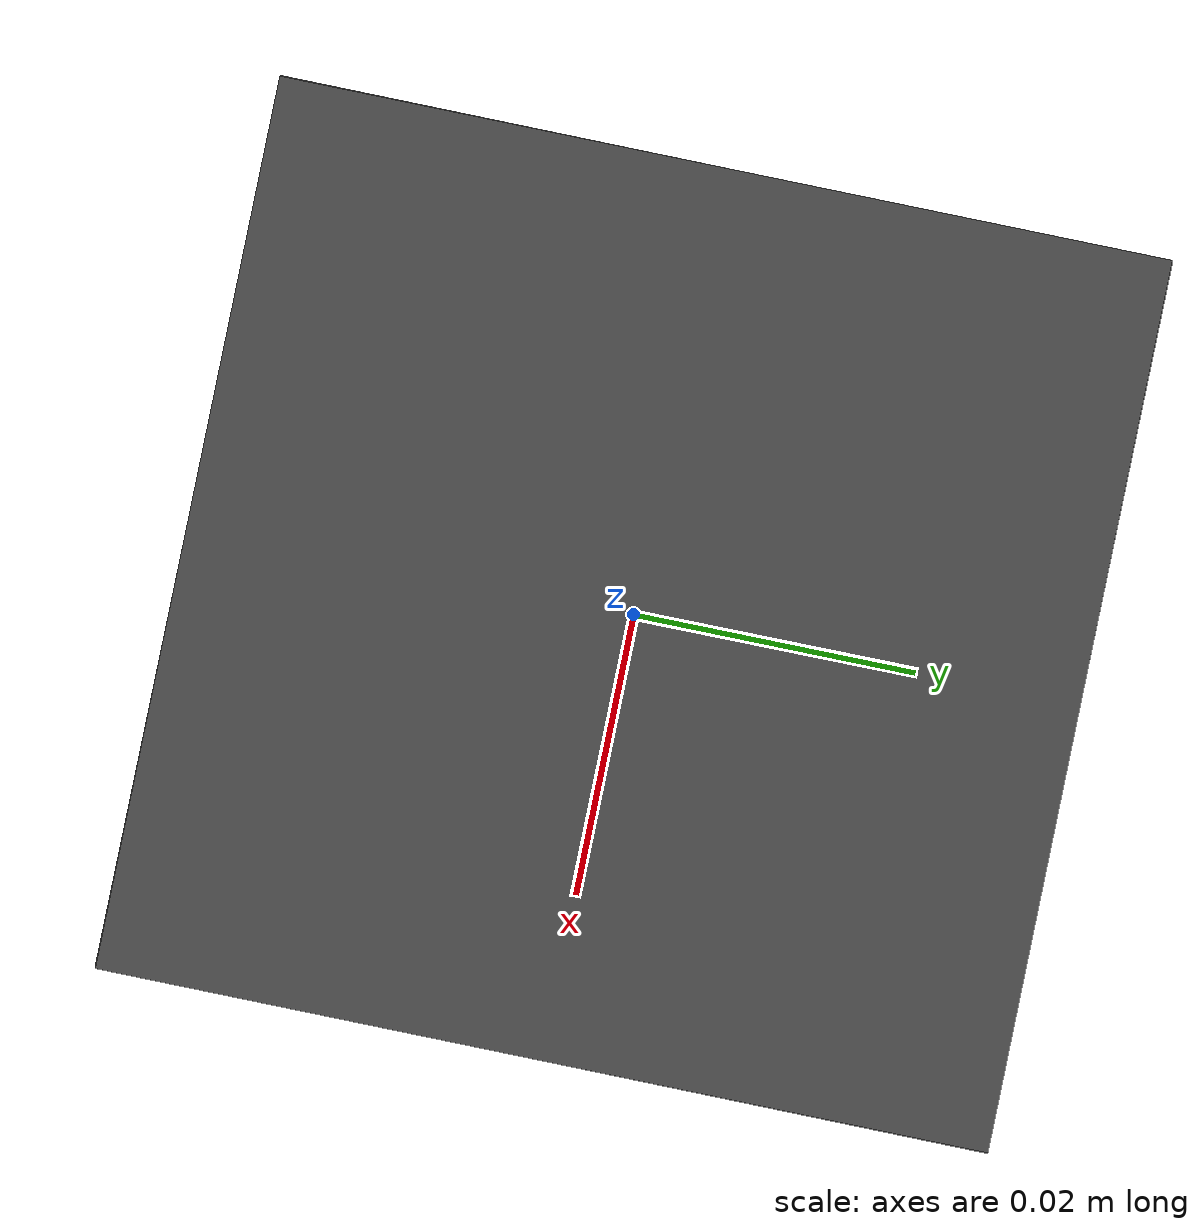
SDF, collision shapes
<?xml version='1.0'?>
<sdf version='1.6'>
  <model name='distance_sensor'>
    <pose>0 0 0 0 0 0</pose>

<!-- distance sensor 00 -->

    <link name='distance_sensor_link_00'>
      <inertial>
        <pose>0 0 0 0 0 0</pose>
        <mass>0.0000000001</mass>
        <inertia>
          <ixx>0.00001</ixx>
          <ixy>0</ixy>
          <ixz>0</ixz>
          <iyy>0.00002</iyy>
          <iyz>0</iyz>
          <izz>0.00002</izz>
        </inertia>
      </inertial>
      <collision name='distance_sensor_collision'>
        <pose>0 0 -0.000001 0 0 0</pose>
        <geometry>
          <box>
            <size>0.05 0.05 0.1</size>
          </box>
        </geometry>
        <surface>
          <contact>
            <ode>
              <max_vel>100.0</max_vel>
              <min_depth>0.001</min_depth>
            </ode>
          </contact>
          <friction>
            <ode>
              <mu>100000.0</mu>
              <mu2>100000.0</mu2>
            </ode>
          </friction>
        </surface>
      </collision>
      <visual name='distance_sensor_visual'>
        <geometry>
          <mesh>
            <uri>model://distance_sensor/meshes/hokuyo.dae</uri>
          </mesh>
        </geometry>
        <material>
          <script>
            <name>Gazebo/DarkGrey</name>
          </script>
        </material>
      </visual>
      <sensor type="ray" name="range_sensor">
      <pose>0.08090 0.0588 0 0 0 0.6283</pose>
      <visualize>true</visualize>
      <update_rate>30</update_rate>
      <ray>
        <scan>
          <horizontal>
            <samples>2</samples>
            <resolution>1</resolution>
            <min_angle>-0.1745</min_angle>
            <max_angle>0.1745</max_angle>
          </horizontal>
          <vertical>
            <samples>2</samples>
            <resolution>1</resolution>
            <min_angle>-0.174533</min_angle>
            <max_angle>0.174533</max_angle>
          </vertical>
        </scan>
        <range>
          <min>0.10</min>
          <max>1</max>
          <resolution>0.001</resolution>
        </range>
        <noise>
          <type>gaussian</type>
          <mean>0.0</mean>
          <stddev>0.01</stddev>
        </noise>
      </ray>
      <plugin filename="libgazebo_ros_range.so" name="gazebo_ros_range">
            <topicName>/iris/distance_sensor_00</topicName>
            <frameName>distance_sensor_link_00</frameName>
            <gaussianNoise>0.000</gaussianNoise>
            <alwaysOn>true</alwaysOn>
            <updateRate>10</updateRate>
            <radiation>infrared</radiation>
            <fov>0.20</fov>
            <visualize>true</visualize>
        </plugin>
    </sensor>
    </link>

<!-- distance sensor 01 -->

    <link name='distance_sensor_link_01'>
      <inertial>
        <pose>0 0 0 0 0 0</pose>
        <mass>0.0000000001</mass>
        <inertia>
          <ixx>0.00001</ixx>
          <ixy>0</ixy>
          <ixz>0</ixz>
          <iyy>0.00002</iyy>
          <iyz>0</iyz>
          <izz>0.00002</izz>
        </inertia>
      </inertial>
      <collision name='distance_sensor_collision'>
        <pose>0 0 -0.000001 0 0 0</pose>
        <geometry>
          <box>
            <size>0.05 0.05 0.1</size>
          </box>
        </geometry>
        <surface>
          <contact>
            <ode>
              <max_vel>100.0</max_vel>
              <min_depth>0.001</min_depth>
            </ode>
          </contact>
          <friction>
            <ode>
              <mu>100000.0</mu>
              <mu2>100000.0</mu2>
            </ode>
          </friction>
        </surface>
      </collision>
      <visual name='distance_sensor_visual'>
        <geometry>
          <mesh>
            <uri>model://distance_sensor/meshes/hokuyo.dae</uri>
          </mesh>
        </geometry>
        <material>
          <script>
            <name>Gazebo/DarkGrey</name>
          </script>
        </material>
      </visual>
      <sensor type="ray" name="range_sensor">
      <pose>0.03090 0.09511 0 0 0 1.2566</pose>
      <visualize>true</visualize>
      <update_rate>30</update_rate>
      <ray>
        <scan>
          <horizontal>
            <samples>2</samples>
            <resolution>1</resolution>
            <min_angle>-0.1745</min_angle>
            <max_angle>0.1745</max_angle>
          </horizontal>
          <vertical>
            <samples>2</samples>
            <resolution>1</resolution>
            <min_angle>-0.174533</min_angle>
            <max_angle>0.174533</max_angle>
          </vertical>
        </scan>
        <range>
          <min>0.10</min>
          <max>1</max>
          <resolution>0.001</resolution>
        </range>
        <noise>
          <type>gaussian</type>
          <mean>0.0</mean>
          <stddev>0.01</stddev>
        </noise>
      </ray>
      <plugin filename="libgazebo_ros_range.so" name="gazebo_ros_range">
            <topicName>/iris/distance_sensor_01</topicName>
            <frameName>distance_sensor_link_01</frameName>
            <gaussianNoise>0.000</gaussianNoise>
            <alwaysOn>true</alwaysOn>
            <updateRate>10</updateRate>
            <radiation>infrared</radiation>
            <fov>0.20</fov>
            <visualize>true</visualize>
        </plugin>
      </sensor>
    </link>

<!-- distance sensor 02 -->

    <link name='distance_sensor_link_02'>
      <inertial>
        <pose>0 0 0 0 0 0</pose>
        <mass>0.0000000001</mass>
        <inertia>
          <ixx>0.00001</ixx>
          <ixy>0</ixy>
          <ixz>0</ixz>
          <iyy>0.00002</iyy>
          <iyz>0</iyz>
          <izz>0.00002</izz>
        </inertia>
      </inertial>
      <collision name='distance_sensor_collision'>
        <pose>0 0 -0.000001 0 0 0</pose>
        <geometry>
          <box>
            <size>0.05 0.05 0.1</size>
          </box>
        </geometry>
        <surface>
          <contact>
            <ode>
              <max_vel>100.0</max_vel>
              <min_depth>0.001</min_depth>
            </ode>
          </contact>
          <friction>
            <ode>
              <mu>100000.0</mu>
              <mu2>100000.0</mu2>
            </ode>
          </friction>
        </surface>
      </collision>
      <visual name='distance_sensor_visual'>
        <geometry>
          <mesh>
            <uri>model://distance_sensor/meshes/hokuyo.dae</uri>
          </mesh>
        </geometry>
        <material>
          <script>
            <name>Gazebo/DarkGrey</name>
          </script>
        </material>
      </visual>
      <sensor type="ray" name="range_sensor">
      <pose>-0.03090 0.09511 0 0 0 1.8850</pose>
      <visualize>true</visualize>
      <update_rate>30</update_rate>
      <ray>
        <scan>
          <horizontal>
            <samples>2</samples>
            <resolution>1</resolution>
            <min_angle>-0.1745</min_angle>
            <max_angle>0.1745</max_angle>
          </horizontal>
          <vertical>
            <samples>2</samples>
            <resolution>1</resolution>
            <min_angle>-0.174533</min_angle>
            <max_angle>0.174533</max_angle>
          </vertical>
        </scan>
        <range>
          <min>0.10</min>
          <max>1</max>
          <resolution>0.001</resolution>
        </range>
        <noise>
          <type>gaussian</type>
          <mean>0.0</mean>
          <stddev>0.01</stddev>
        </noise>
      </ray>
      <plugin filename="libgazebo_ros_range.so" name="gazebo_ros_range">
            <topicName>/iris/distance_sensor_02</topicName>
            <frameName>distance_sensor_link_02</frameName>
            <gaussianNoise>0.000</gaussianNoise>
            <alwaysOn>true</alwaysOn>
            <updateRate>10</updateRate>
            <radiation>infrared</radiation>
            <fov>0.20</fov>
            <visualize>true</visualize>
        </plugin>
      </sensor>
    </link>

<!-- distance sensor 03 -->

    <link name='distance_sensor_link_03'>
      <inertial>
        <pose>0 0 0 0 0 0</pose>
        <mass>0.0000000001</mass>
        <inertia>
          <ixx>0.00001</ixx>
          <ixy>0</ixy>
          <ixz>0</ixz>
          <iyy>0.00002</iyy>
          <iyz>0</iyz>
          <izz>0.00002</izz>
        </inertia>
      </inertial>
      <collision name='distance_sensor_collision'>
        <pose>0 0 -0.000001 0 0 0</pose>
        <geometry>
          <box>
            <size>0.05 0.05 0.1</size>
          </box>
        </geometry>
        <surface>
          <contact>
            <ode>
              <max_vel>100.0</max_vel>
              <min_depth>0.001</min_depth>
            </ode>
          </contact>
          <friction>
            <ode>
              <mu>100000.0</mu>
              <mu2>100000.0</mu2>
            </ode>
          </friction>
        </surface>
      </collision>
      <visual name='distance_sensor_visual'>
        <geometry>
          <mesh>
            <uri>model://distance_sensor/meshes/hokuyo.dae</uri>
          </mesh>
        </geometry>
        <material>
          <script>
            <name>Gazebo/DarkGrey</name>
          </script>
        </material>
      </visual>
      <sensor type="ray" name="range_sensor">
      <pose>-0.08090 0.05878 0 0 0 2.5133</pose>
      <visualize>true</visualize>
      <update_rate>30</update_rate>
      <ray>
        <scan>
          <horizontal>
            <samples>2</samples>
            <resolution>1</resolution>
            <min_angle>-0.1745</min_angle>
            <max_angle>0.1745</max_angle>
          </horizontal>
          <vertical>
            <samples>2</samples>
            <resolution>1</resolution>
            <min_angle>-0.174533</min_angle>
            <max_angle>0.174533</max_angle>
          </vertical>
        </scan>
        <range>
          <min>0.10</min>
          <max>1</max>
          <resolution>0.001</resolution>
        </range>
        <noise>
          <type>gaussian</type>
          <mean>0.0</mean>
          <stddev>0.01</stddev>
        </noise>
      </ray>
      <plugin filename="libgazebo_ros_range.so" name="gazebo_ros_range">
            <topicName>/iris/distance_sensor_03</topicName>
            <frameName>distance_sensor_link_03</frameName>
            <gaussianNoise>0.000</gaussianNoise>
            <alwaysOn>true</alwaysOn>
            <updateRate>10</updateRate>
            <radiation>infrared</radiation>
            <fov>0.20</fov>
            <visualize>true</visualize>
        </plugin>
      </sensor>
    </link>

<!-- distance sensor 04 -->

    <link name='distance_sensor_link_04'>
      <inertial>
        <pose>0 0 0 0 0 0</pose>
        <mass>0.0000000001</mass>
        <inertia>
          <ixx>0.00001</ixx>
          <ixy>0</ixy>
          <ixz>0</ixz>
          <iyy>0.00002</iyy>
          <iyz>0</iyz>
          <izz>0.00002</izz>
        </inertia>
      </inertial>
      <collision name='distance_sensor_collision'>
        <pose>0 0 -0.000001 0 0 3.14</pose>
        <geometry>
          <box>
            <size>0.05 0.05 0.1</size>
          </box>
        </geometry>
        <surface>
          <contact>
            <ode>
              <max_vel>100.0</max_vel>
              <min_depth>0.001</min_depth>
            </ode>
          </contact>
          <friction>
            <ode>
              <mu>100000.0</mu>
              <mu2>100000.0</mu2>
            </ode>
          </friction>
        </surface>
      </collision>
      <visual name='distance_sensor_visual'>
        <geometry>
          <mesh>
            <uri>model://distance_sensor/meshes/hokuyo.dae</uri>
          </mesh>
        </geometry>
        <material>
          <script>
            <name>Gazebo/DarkGrey</name>
          </script>
        </material>
      </visual>
      <sensor type="ray" name="range_sensor">
      <pose>-0.08090 -0.05878 0 0 0 3.7699</pose>
      <visualize>true</visualize>
      <update_rate>30</update_rate>
      <ray>
        <scan>
          <horizontal>
            <samples>2</samples>
            <resolution>1</resolution>
            <min_angle>-0.1745</min_angle>
            <max_angle>0.1745</max_angle>
          </horizontal>
          <vertical>
            <samples>2</samples>
            <resolution>1</resolution>
            <min_angle>-0.174533</min_angle>
            <max_angle>0.174533</max_angle>
          </vertical>
        </scan>
        <range>
          <min>0.10</min>
          <max>1</max>
          <resolution>0.001</resolution>
        </range>
        <noise>
          <type>gaussian</type>
          <mean>0.0</mean>
          <stddev>0.01</stddev>
        </noise>
      </ray>
      <plugin filename="libgazebo_ros_range.so" name="gazebo_ros_range">
            <topicName>/iris/distance_sensor_04</topicName>
            <frameName>distance_sensor_link_04</frameName>
            <gaussianNoise>0.000</gaussianNoise>
            <alwaysOn>true</alwaysOn>
            <updateRate>10</updateRate>
            <radiation>infrared</radiation>
            <fov>0.20</fov>
            <visualize>true</visualize>
        </plugin>
      </sensor>
    </link>

<!-- distance sensor 05 -->

    <link name='distance_sensor_link_05'>
      <inertial>
        <pose>0 0 0 0 0 0</pose>
        <mass>0.0000000001</mass>
        <inertia>
          <ixx>0.00001</ixx>
          <ixy>0</ixy>
          <ixz>0</ixz>
          <iyy>0.00002</iyy>
          <iyz>0</iyz>
          <izz>0.00002</izz>
        </inertia>
      </inertial>
      <collision name='distance_sensor_collision'>
        <pose>0 0 -0.000001 0 0 0</pose>
        <geometry>
          <box>
            <size>0.05 0.05 0.1</size>
          </box>
        </geometry>
        <surface>
          <contact>
            <ode>
              <max_vel>100.0</max_vel>
              <min_depth>0.001</min_depth>
            </ode>
          </contact>
          <friction>
            <ode>
              <mu>100000.0</mu>
              <mu2>100000.0</mu2>
            </ode>
          </friction>
        </surface>
      </collision>
      <visual name='distance_sensor_visual'>
        <geometry>
          <mesh>
            <uri>model://distance_sensor/meshes/hokuyo.dae</uri>
          </mesh>
        </geometry>
        <material>
          <script>
            <name>Gazebo/DarkGrey</name>
          </script>
        </material>
      </visual>
      <sensor type="ray" name="range_sensor">
      <pose>-0.03090 -0.09511 0 0 0 4.3982</pose>
      <visualize>true</visualize>
      <update_rate>30</update_rate>
      <ray>
        <scan>
          <horizontal>
            <samples>2</samples>
            <resolution>1</resolution>
            <min_angle>-0.1745</min_angle>
            <max_angle>0.1745</max_angle>
          </horizontal>
          <vertical>
            <samples>2</samples>
            <resolution>1</resolution>
            <min_angle>-0.174533</min_angle>
            <max_angle>0.174533</max_angle>
          </vertical>
        </scan>
        <range>
          <min>0.10</min>
          <max>1</max>
          <resolution>0.001</resolution>
        </range>
        <noise>
          <type>gaussian</type>
          <mean>0.0</mean>
          <stddev>0.01</stddev>
        </noise>
      </ray>
      <plugin filename="libgazebo_ros_range.so" name="gazebo_ros_range">
            <topicName>/iris/distance_sensor_05</topicName>
            <frameName>distance_sensor_link_05</frameName>
            <gaussianNoise>0.000</gaussianNoise>
            <alwaysOn>true</alwaysOn>
            <updateRate>10</updateRate>
            <radiation>infrared</radiation>
            <fov>0.20</fov>
            <visualize>true</visualize>
        </plugin>
      </sensor>
    </link>

<!-- distance sensor 06 -->

    <link name='distance_sensor_link_06'>
      <inertial>
        <pose>0 0 0 0 0 0</pose>
        <mass>0.0000000001</mass>
        <inertia>
          <ixx>0.00001</ixx>
          <ixy>0</ixy>
          <ixz>0</ixz>
          <iyy>0.00002</iyy>
          <iyz>0</iyz>
          <izz>0.00002</izz>
        </inertia>
      </inertial>
      <collision name='distance_sensor_collision'>
        <pose>0 0 -0.000001 0 0 0</pose>
        <geometry>
          <box>
            <size>0.05 0.05 0.1</size>
          </box>
        </geometry>
        <surface>
          <contact>
            <ode>
              <max_vel>100.0</max_vel>
              <min_depth>0.001</min_depth>
            </ode>
          </contact>
          <friction>
            <ode>
              <mu>100000.0</mu>
              <mu2>100000.0</mu2>
            </ode>
          </friction>
        </surface>
      </collision>
      <visual name='distance_sensor_visual'>
        <geometry>
          <mesh>
            <uri>model://distance_sensor/meshes/hokuyo.dae</uri>
          </mesh>
        </geometry>
        <material>
          <script>
            <name>Gazebo/DarkGrey</name>
          </script>
        </material>
      </visual>
      <sensor type="ray" name="range_sensor">
      <pose>0.03090 -0.09511 0 0 0 5.0265</pose>
      <visualize>true</visualize>
      <update_rate>30</update_rate>
      <ray>
        <scan>
          <horizontal>
            <samples>2</samples>
            <resolution>1</resolution>
            <min_angle>-0.1745</min_angle>
            <max_angle>0.1745</max_angle>
          </horizontal>
          <vertical>
            <samples>2</samples>
            <resolution>1</resolution>
            <min_angle>-0.174533</min_angle>
            <max_angle>0.174533</max_angle>
          </vertical>
        </scan>
        <range>
          <min>0.10</min>
          <max>1</max>
          <resolution>0.001</resolution>
        </range>
        <noise>
          <type>gaussian</type>
          <mean>0.0</mean>
          <stddev>0.01</stddev>
        </noise>
      </ray>
      <plugin filename="libgazebo_ros_range.so" name="gazebo_ros_range">
            <topicName>/iris/distance_sensor_06</topicName>
            <frameName>distance_sensor_link_06</frameName>
            <gaussianNoise>0.000</gaussianNoise>
            <alwaysOn>true</alwaysOn>
            <updateRate>10</updateRate>
            <radiation>infrared</radiation>
            <fov>0.20</fov>
            <visualize>true</visualize>
        </plugin>
      </sensor>
    </link>

<!-- distance sensor 07 -->

    <link name='distance_sensor_link_07'>
      <inertial>
        <pose>0 0 0 0 0 0</pose>
        <mass>0.0000000001</mass>
        <inertia>
          <ixx>0.00001</ixx>
          <ixy>0</ixy>
          <ixz>0</ixz>
          <iyy>0.00002</iyy>
          <iyz>0</iyz>
          <izz>0.00002</izz>
        </inertia>
      </inertial>
      <collision name='distance_sensor_collision'>
        <pose>0 0 -0.000001 0 0 0</pose>
        <geometry>
          <box>
            <size>0.05 0.05 0.1</size>
          </box>
        </geometry>
        <surface>
          <contact>
            <ode>
              <max_vel>100.0</max_vel>
              <min_depth>0.001</min_depth>
            </ode>
          </contact>
          <friction>
            <ode>
              <mu>100000.0</mu>
              <mu2>100000.0</mu2>
            </ode>
          </friction>
        </surface>
      </collision>
      <visual name='distance_sensor_visual'>
        <geometry>
          <mesh>
            <uri>model://distance_sensor/meshes/hokuyo.dae</uri>
          </mesh>
        </geometry>
        <material>
          <script>
            <name>Gazebo/DarkGrey</name>
          </script>
        </material>
      </visual>
      <sensor type="ray" name="range_sensor">
      <pose>0.08090 -0.05878 0 0 0 5.6549</pose>
      <visualize>true</visualize>
      <update_rate>30</update_rate>
      <ray>
        <scan>
          <horizontal>
            <samples>2</samples>
            <resolution>1</resolution>
            <min_angle>-0.1745</min_angle>
            <max_angle>0.1745</max_angle>
          </horizontal>
          <vertical>
            <samples>2</samples>
            <resolution>1</resolution>
            <min_angle>-0.174533</min_angle>
            <max_angle>0.174533</max_angle>
          </vertical>
        </scan>
        <range>
          <min>0.10</min>
          <max>1</max>
          <resolution>0.001</resolution>
        </range>
        <noise>
          <type>gaussian</type>
          <mean>0.0</mean>
          <stddev>0.01</stddev>
        </noise>
      </ray>
      <plugin filename="libgazebo_ros_range.so" name="gazebo_ros_range">
            <topicName>/iris/distance_sensor_07</topicName>
            <frameName>distance_sensor_link_07</frameName>
            <gaussianNoise>0.000</gaussianNoise>
            <alwaysOn>true</alwaysOn>
            <updateRate>10</updateRate>
            <radiation>infrared</radiation>
            <fov>0.20</fov>
            <visualize>true</visualize>
        </plugin>
      </sensor>
    </link>

    <static>0</static>
  </model>
</sdf>
